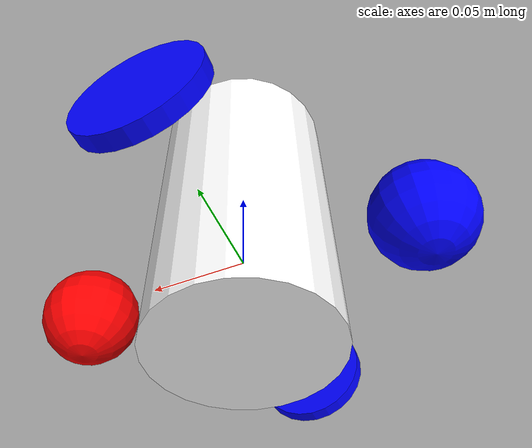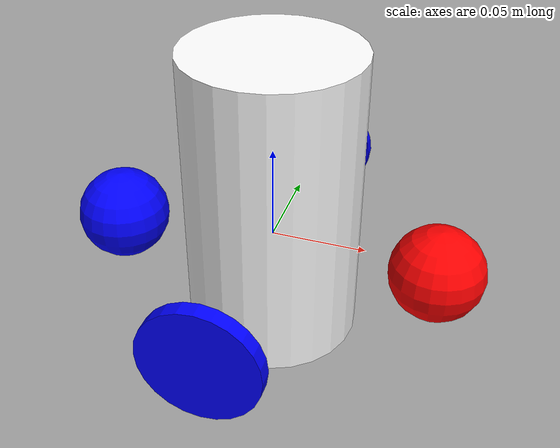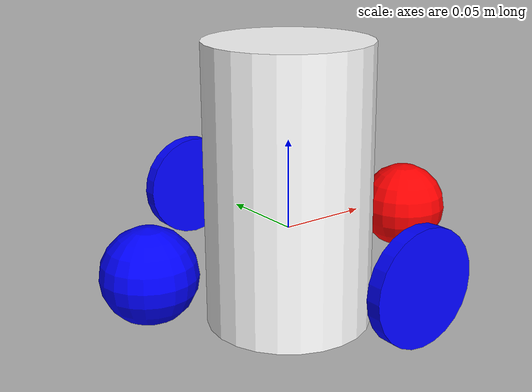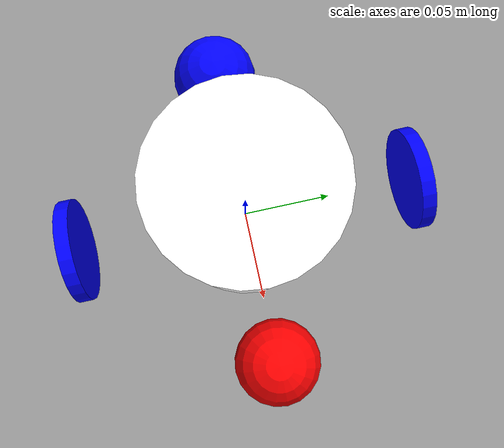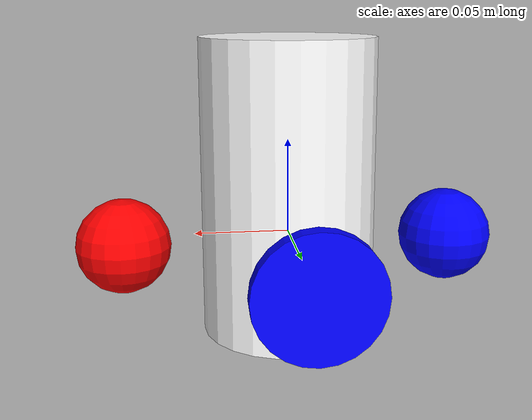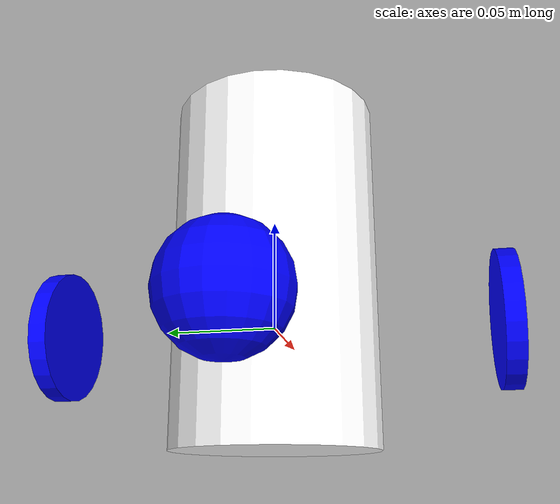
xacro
<?xml version="1.0"?>
<robot xmlns:xacro="http://www.ros.org/wiki/xacro"  name="robot">

  <xacro:include filename="inertial_macros.xacro" />

  <material name="black">
    <color rgba="0 0 0 1"/>
  </material>

  <material name="white">
    <color rgba="1 1 1 1"/>
  </material>

  <material name="orange">
    <color rgba="1 0.5 0 1"/>
  </material>

  <material name="blue">
    <color rgba="0 0 1 1"/>
  </material>

  <material name="red">
    <color rgba="1 0 0 1"/>
  </material>

  <material name="green">
    <color rgba="0 1 0 1"/>
  </material>

  <!-- BASE LINK -->

  <!-- Set to be the center of the two drive wheels -->
  <link name="base_link">

  </link>

  <!-- BASE FOOTPRINT LINK -->

  <joint name="base_footprint_joint" type="fixed">
  	<parent link="base_link"/>
  	<child link="base_footprint"/>
  	<origin xyz="0 0 0" rpy="0 0 0"/>
  </joint>

  <link name="base_footprint">
  </link>
  <!-- CHASSIS LINK -->

  <joint name="chassis_joint" type="fixed">
    <parent link="base_link"/>
    <child link="chassis"/>
    <origin xyz="0 0 0.025"/>
  </joint>
  <link name="chassis">
    <!-- Cylinder with r=46mm, length: 157 mm (laying down) (ASSUMPTION) -->
    <visual>
      <geometry>
        <cylinder length="0.157" radius="0.046"/>
      </geometry>
      <material name="white"/>
    </visual>
    <collision>
      <geometry>
        <cylinder length="0.157" radius="0.046"/>
      </geometry>

    </collision>
    <!-- Mass=0.5kg (ASSUMPTION) -->
    <xacro:inertial_cylinder mass="0.5" length="0.05" radius="0.12">
      <!-- Not sure if this is correct -->
      <origin xyz="0 0 0.025" rpy="0 0 0"/>
    </xacro:inertial_cylinder>
  </link>
`
  <gazebo reference="chassis">
    <material>Gazebo/White</material>
  </gazebo>

  <!-- LEFT WHEEL LINK -->
  <joint name="left_wheel_joint" type="continuous">
    <parent link="base_link"/>
    <child link="left_wheel"/>
    <origin xyz="0 0.1 0" rpy="-${pi/2} 0 0"/>
    <axis xyz="0 0 1"/>
  </joint>

  <link name="left_wheel">
    <!-- Cylinder with r=30mm, h=8mm (FROM WEBSITE) -->
    <visual>
      <geometry>
        <cylinder length="0.008" radius="0.03"/>
      </geometry>
      <material name="blue"/>
    </visual>
    <collision>
      <geometry>
        <cylinder length="0.008" radius="0.03"/>
      </geometry>
    </collision>
    <!-- Mass=0.1kg (ASSUMPTION) -->
    <xacro:inertial_cylinder mass="0.1" length="0.008" radius="0.03">
      <origin xyz="0 0 0" rpy="0 0 0"/>
    </xacro:inertial_cylinder>
  </link>

  <gazebo reference="left_wheel">
    <material>Gazebo/Blue</material>
  </gazebo>

  <!-- RIGHT WHEEL LINK -->
  <joint name="right_wheel_joint" type="continuous">
    <parent link="base_link"/>
    <child link="right_wheel"/>
    <origin xyz="0 -0.10 0" rpy="${pi/2} 0 0"/>
    <axis xyz="0 0 -1"/>
  </joint>

  <link name="right_wheel">
    <!-- Cylinder with r=30mm, h=8mm (FROM WEBSITE) -->
    <visual>
      <geometry>
        <cylinder length="0.008" radius="0.03"/>
      </geometry>
      <material name="blue"/>
    </visual>
    <collision>
      <geometry>
        <cylinder length="0.008" radius="0.03"/>
      </geometry>
    </collision>
    <!-- Mass=0.1kg (ASSUMPTION) -->
    <xacro:inertial_cylinder mass="0.1" length="0.008" radius="0.03">
      <origin xyz="0 0 0" rpy="0 0 0"/>
    </xacro:inertial_cylinder>
  </link>

  <gazebo reference="right_wheel">
    <material>Gazebo/Blue</material>
  </gazebo>

  <!-- CASTER WHEEL LINK -->
  <!-- Frictionless ball that does not rotate -->

   <joint name="caster_wheel_joint" type="fixed">
	<parent link="chassis"/>
	<child link="caster_wheel"/>
	<origin xyz="-0.0875 0 -0.03"/>
  </joint>

  <link name="caster_wheel">
	<!-- Sphere with r=25mm (ASSUMPTION) -->
	<visual>
  	<geometry>
    	<sphere radius="0.025"/>
  	</geometry>
  	<material name="blue"/>
	</visual>
	<collision>
  	<geometry>
    	<sphere radius="0.025"/>
  	</geometry>
	</collision>
	<!-- Mass=0.1kg (ASSUMPTION) -->
	<xacro:inertial_sphere mass="0.1" radius="0.025">
  	<origin xyz="0 0 0" rpy="0 0 0"/>
	</xacro:inertial_sphere>
  </link>

  <!-- No friction -->
  <gazebo reference="caster_wheel">
	<material>Gazebo/Blue</material>
	<mu1>0.001</mu1>
	<mu2>0.001</mu2>
  </gazebo>

  <joint name="front_caster_wheel_joint" type="fixed">
    <parent link="chassis"/>
    <child link="caster_wheel_2"/>
    <origin xyz="0.0875 0 -0.03"/>
  </joint>

  <link name="caster_wheel_2">
    <!-- Sphere with r=25mm (ASSUMPTION) -->
    <visual>
      <geometry>
        <sphere radius="0.025"/>
      </geometry>
      <material name="red"/>
    </visual>
    <collision>
      <geometry>
        <sphere radius="0.025"/>
      </geometry>
    </collision>
    <!-- Mass=0.1kg (ASSUMPTION) -->
    <xacro:inertial_sphere mass="0.1" radius="0.025">
      <origin xyz="0 0 0" rpy="0 0 0"/>
    </xacro:inertial_sphere>
  </link>

  <gazebo reference="caster_wheel_2">
    <material>Gazebo/Red</material>
    <mu1>0.001</mu1>
    <mu2>0.001</mu2>
  </gazebo>
</robot>

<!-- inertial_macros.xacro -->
<robot xmlns:xacro="http://www.ros.org/wiki/xacro" >

    <!-- Specify some standard inertial calculations https://en.wikipedia.org/wiki/List_of_moments_of_inertia -->
    <!-- From https://github.com/joshnewans/articubot_one/blob/d5aa5e9bc9039073c0d8fd7fe426e170be79c087/description/inertial_macros.xacro -->
    <!-- These make use of xacro's mathematical functionality -->

    <xacro:macro name="inertial_sphere" params="mass radius *origin">
        <inertial>
            <xacro:insert_block name="origin"/>
            <mass value="${mass}" />
            <inertia ixx="${(2/5) * mass * (radius*radius)}" ixy="0.0" ixz="0.0"
                    iyy="${(2/5) * mass * (radius*radius)}" iyz="0.0"
                    izz="${(2/5) * mass * (radius*radius)}" />
        </inertial>
    </xacro:macro>

    <xacro:macro name="inertial_box" params="mass x y z *origin">
        <inertial>
            <xacro:insert_block name="origin"/>
            <mass value="${mass}" />
            <inertia ixx="${(1/12) * mass * (y*y+z*z)}" ixy="0.0" ixz="0.0"
                    iyy="${(1/12) * mass * (x*x+z*z)}" iyz="0.0"
                    izz="${(1/12) * mass * (x*x+y*y)}" />
        </inertial>
    </xacro:macro>

    <xacro:macro name="inertial_cylinder" params="mass length radius *origin">
        <inertial>
            <xacro:insert_block name="origin"/>
            <mass value="${mass}" />
            <inertia ixx="${(1/12) * mass * (3*radius*radius + length*length)}" ixy="0.0" ixz="0.0"
                    iyy="${(1/12) * mass * (3*radius*radius + length*length)}" iyz="0.0"
                    izz="${(1/2) * mass * (radius*radius)}" />
        </inertial>
    </xacro:macro>

</robot>
